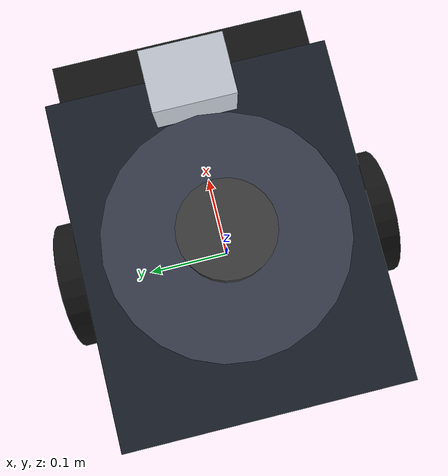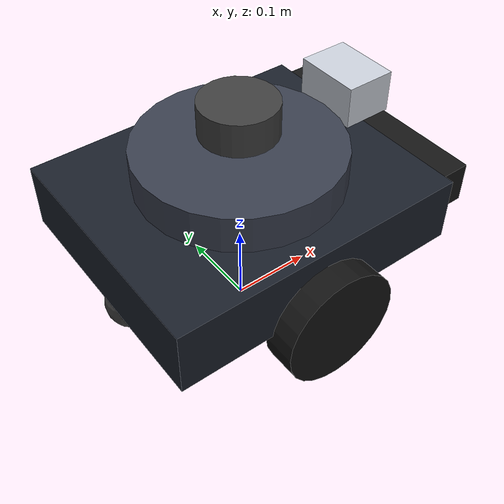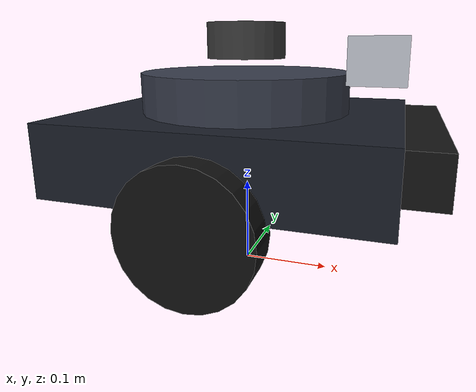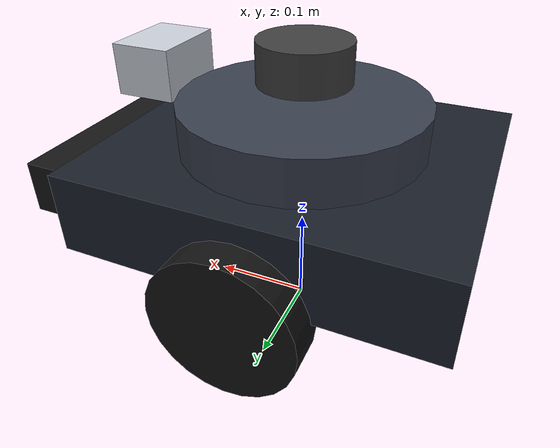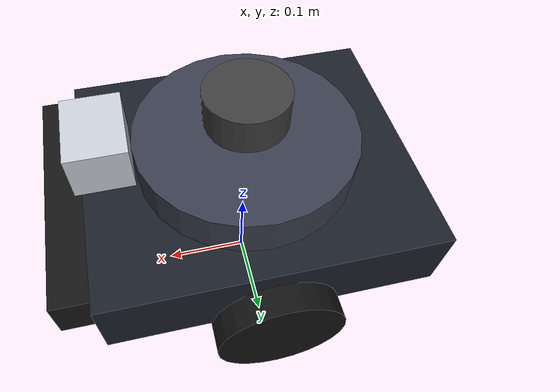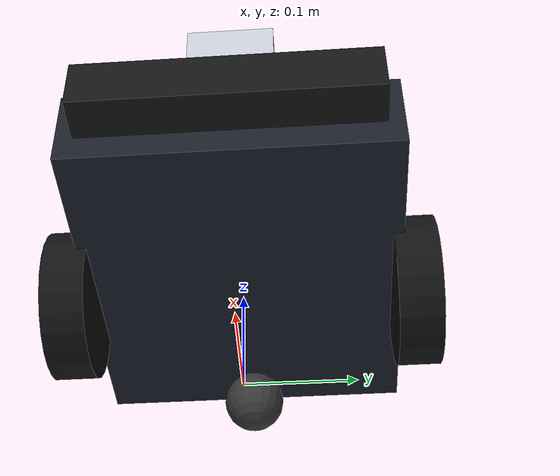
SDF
<?xml version="1.0"?>
<sdf version="1.6">
  <model name="agent_bot">
    <static>false</static>

    <link name="base_link">
      <pose>0 0 0.15 0 0 0</pose>
      <inertial>
        <mass>6.5</mass>
        <inertia>
          <ixx>0.16</ixx>
          <ixy>0.0</ixy>
          <ixz>0.0</ixz>
          <iyy>0.18</iyy>
          <iyz>0.0</iyz>
          <izz>0.28</izz>
        </inertia>
      </inertial>

      <collision name="base_collision">
        <geometry>
          <box>
            <size>0.34 0.28 0.14</size>
          </box>
        </geometry>
      </collision>

      <visual name="chassis_lower">
        <geometry>
          <box>
            <size>0.36 0.30 0.08</size>
          </box>
        </geometry>
        <material>
          <ambient>0.06 0.08 0.10 1.0</ambient>
          <diffuse>0.10 0.12 0.16 1.0</diffuse>
          <specular>0.03 0.03 0.03 1.0</specular>
        </material>
      </visual>

      <visual name="chassis_top">
        <pose>0 0 0.06 0 0 0</pose>
        <geometry>
          <cylinder>
            <radius>0.12</radius>
            <length>0.05</length>
          </cylinder>
        </geometry>
        <material>
          <ambient>0.16 0.18 0.22 1.0</ambient>
          <diffuse>0.22 0.24 0.30 1.0</diffuse>
          <specular>0.04 0.04 0.04 1.0</specular>
        </material>
      </visual>

      <visual name="front_bumper">
        <pose>0.19 0 0.01 0 0 0</pose>
        <geometry>
          <box>
            <size>0.06 0.27 0.05</size>
          </box>
        </geometry>
        <material>
          <ambient>0.04 0.04 0.04 1.0</ambient>
          <diffuse>0.08 0.08 0.08 1.0</diffuse>
        </material>
      </visual>

      <visual name="wheel_left">
        <pose>0 0.16 -0.05 1.5708 0 0</pose>
        <geometry>
          <cylinder>
            <radius>0.07</radius>
            <length>0.04</length>
          </cylinder>
        </geometry>
        <material>
          <ambient>0.03 0.03 0.03 1.0</ambient>
          <diffuse>0.07 0.07 0.07 1.0</diffuse>
        </material>
      </visual>

      <visual name="wheel_right">
        <pose>0 -0.16 -0.05 1.5708 0 0</pose>
        <geometry>
          <cylinder>
            <radius>0.07</radius>
            <length>0.04</length>
          </cylinder>
        </geometry>
        <material>
          <ambient>0.03 0.03 0.03 1.0</ambient>
          <diffuse>0.07 0.07 0.07 1.0</diffuse>
        </material>
      </visual>

      <visual name="rear_caster">
        <pose>-0.15 0 -0.065 0 0 0</pose>
        <geometry>
          <sphere>
            <radius>0.03</radius>
          </sphere>
        </geometry>
        <material>
          <ambient>0.16 0.16 0.16 1.0</ambient>
          <diffuse>0.22 0.22 0.22 1.0</diffuse>
        </material>
      </visual>

      <visual name="lidar_puck">
        <pose>0 0 0.12 0 0 0</pose>
        <geometry>
          <cylinder>
            <radius>0.045</radius>
            <length>0.04</length>
          </cylinder>
        </geometry>
        <material>
          <ambient>0.18 0.18 0.18 1.0</ambient>
          <diffuse>0.24 0.24 0.24 1.0</diffuse>
        </material>
      </visual>

      <visual name="camera_module">
        <pose>0.15 0 0.10 0 0 0</pose>
        <geometry>
          <box>
            <size>0.06 0.08 0.05</size>
          </box>
        </geometry>
        <material>
          <ambient>0.70 0.72 0.76 1.0</ambient>
          <diffuse>0.78 0.80 0.84 1.0</diffuse>
        </material>
      </visual>

      <sensor name="front_camera" type="camera">
        <pose>0.17 0 0.10 0 0 0</pose>
        <always_on>true</always_on>
        <update_rate>15.0</update_rate>
        <visualize>true</visualize>
        <camera>
          <horizontal_fov>1.39626</horizontal_fov>
          <image>
            <width>640</width>
            <height>360</height>
            <format>R8G8B8</format>
          </image>
          <clip>
            <near>0.05</near>
            <far>35.0</far>
          </clip>
        </camera>
        <plugin name="gazebo_ros_camera" filename="libgazebo_ros_camera.so">
          <ros>
            <remapping>image_raw:=camera/image_raw</remapping>
            <remapping>camera_info:=camera/camera_info</remapping>
          </ros>
          <camera_name>camera</camera_name>
          <frame_name>camera_link</frame_name>
        </plugin>
      </sensor>

      <sensor name="planar_lidar" type="ray">
        <pose>0 0 0.13 0 0 0</pose>
        <always_on>true</always_on>
        <update_rate>20.0</update_rate>
        <visualize>false</visualize>
        <ray>
          <scan>
            <horizontal>
              <samples>720</samples>
              <resolution>1</resolution>
              <min_angle>-3.14159</min_angle>
              <max_angle>3.14159</max_angle>
            </horizontal>
          </scan>
          <range>
            <min>0.05</min>
            <max>40.0</max>
            <resolution>0.01</resolution>
          </range>
        </ray>
        <plugin name="gazebo_ros_laser" filename="libgazebo_ros_ray_sensor.so">
          <ros>
            <remapping>~/out:=scan</remapping>
          </ros>
          <output_type>sensor_msgs/LaserScan</output_type>
          <frame_name>laser_link</frame_name>
        </plugin>
      </sensor>
    </link>

    <plugin name="planar_move" filename="libgazebo_ros_planar_move.so">
      <ros>
        <remapping>cmd_vel:=cmd_vel</remapping>
        <remapping>odom:=odom</remapping>
      </ros>
      <command_timeout>0.5</command_timeout>
      <odometry_frame>odom</odometry_frame>
      <robot_base_frame>base_link</robot_base_frame>
      <publish_odom>true</publish_odom>
      <publish_odom_tf>false</publish_odom_tf>
    </plugin>
  </model>
</sdf>
